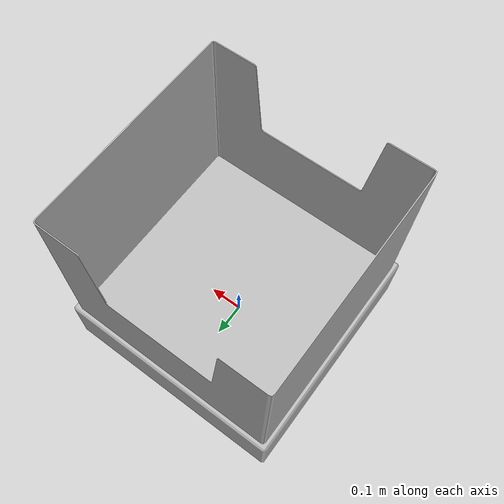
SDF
<?xml version="1.0" ?>
<sdf version="1.6">
  <model name="workcell_bin_green">
    <static>true</static>
    <link name="link">
      <visual name="visual">
        <geometry>
          <mesh>
            <uri>model://workcell_bin_green/meshes/bin_green.dae</uri>
            <scale>1.0 1.0 0.85</scale>
          </mesh>
        </geometry>
      </visual>

      <collision name="base">
        <pose>0 0 0.085 0 0 0</pose>
        <geometry>
          <box>
            <size>0.66836 0.66836 0.17</size>
          </box>
        </geometry>
      </collision>

      <collision name="left_wall">
        <pose>-0.319 0 0.42 0 0 0</pose>
        <geometry>
          <box>
            <size>0.003 0.63803 0.5</size>
          </box>
        </geometry>
      </collision>

      <collision name="right_wall">
        <pose>0.319 0 0.42 0 0 0</pose>
        <geometry>
          <box>
            <size>0.003 0.63803 0.5</size>
          </box>
        </geometry>
      </collision>

      <collision name="front_left_wall">
        <pose>-0.25331 0.31899 0.42 0 0 0</pose>
        <geometry>
          <box>
            <size>0.13437 0.003 0.5</size>
          </box>
        </geometry>
      </collision>

      <collision name="front_mid_wall">
        <pose>0 0.31899 0.3 0 0 0</pose>
        <geometry>
          <box>
            <size>0.37226 0.003 0.26</size>
          </box>
        </geometry>
      </collision>

      <collision name="front_right_wall">
        <pose>0.25331 0.31899 0.42 0 0 0</pose>
        <geometry>
          <box>
            <size>0.13437 0.003 0.5</size>
          </box>
        </geometry>
      </collision>

      <collision name="back_left_wall">
        <pose>-0.25331 -0.31899 0.42 0 0 0</pose>
        <geometry>
          <box>
            <size>0.13437 0.003 0.5</size>
          </box>
        </geometry>
      </collision>

      <collision name="back_mid_wall">
        <pose>0 -0.31899 0.3 0 0 0</pose>
        <geometry>
          <box>
            <size>0.37226 0.003 0.26</size>
          </box>
        </geometry>
      </collision>

      <collision name="back_right_wall">
        <pose>0.25331 -0.31899 0.42 0 0 0</pose>
        <geometry>
          <box>
            <size>0.13437 0.003 0.5</size>
          </box>
        </geometry>
      </collision>
    </link>
  </model>
</sdf>
